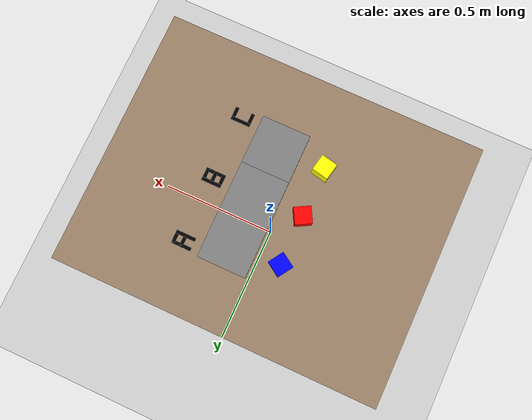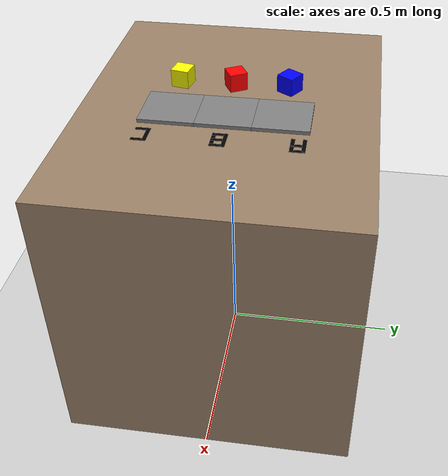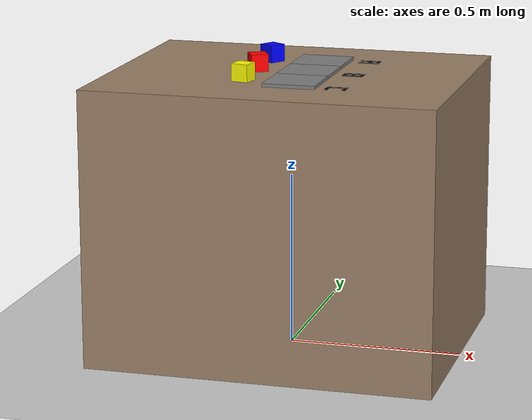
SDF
<?xml version="1.0" ?>
<sdf version="1.8">
  <world name="ur3e_sorting_world">

    <!-- Các plugin cốt lõi -->
    <plugin filename="ignition-gazebo-physics-system" name="ignition::gazebo::systems::Physics"/>
    <plugin filename="ignition-gazebo-user-commands-system" name="ignition::gazebo::systems::UserCommands"/>
    <plugin filename="ignition-gazebo-scene-broadcaster-system" name="ignition::gazebo::systems::SceneBroadcaster"/>

    <gravity>0 0 -9.8</gravity>

    <!-- Ánh sáng -->
    <light type="directional" name="sun">
      <cast_shadows>true</cast_shadows>
      <pose>0 0 10 0 0 0</pose>
      <diffuse>0.9 0.9 0.9 1</diffuse>
      <specular>0.2 0.2 0.2 1</specular>
      <direction>-0.5 0.5 -0.9</direction>
    </light>

    <!-- Mặt đất -->
    <model name="ground_plane">
      <static>true</static>
      <link name="link">
        <collision name="collision">
          <geometry><plane><normal>0 0 1</normal><size>10 10</size></plane></geometry>
        </collision>
        <visual name="visual">
          <geometry><plane><normal>0 0 1</normal><size>10 10</size></plane></geometry>
          <material>
            <ambient>0.8 0.8 0.8 1</ambient>
            <diffuse>0.8 0.8 0.8 1</diffuse>
          </material>
        </visual>
      </link>
    </model>

    <!-- ======================= BÀN (TABLE) ======================= -->
    <model name="table">
      <static>true</static>
      <pose>0 0 0.4 0 0 0</pose>
      <link name="link">
        <collision name="collision">
          <geometry><box><size>1.0 0.8 0.8</size></box></geometry>
        </collision>
        <visual name="visual">
          <geometry><box><size>1.0 0.8 0.8</size></box></geometry>
          <material>
            <ambient>0.6 0.5 0.4 1</ambient>
            <diffuse>0.6 0.5 0.4 1</diffuse>
          </material>
        </visual>
      </link>
    </model>

    <!-- ================= VỊ TRÍ ĐẶT ROBOT ================= -->
    <!-- Khi spawn UR3e hãy dùng tọa độ này: X = -0.35, Y = 0.0, Z = 0.8 -->

    <!-- ======================= CUBES ======================= -->
    <!-- Nằm trên mặt bàn, phía trước các khay. Nếu đổi vị trí thì phải sửa
         ur_task_planner/config/scene.yaml cho khớp. -->
    <model name="red_cube">
      <static>false</static>
      <pose>-0.10 0.0 0.825 0 0 0.5</pose>
      <link name="link">
        <inertial><mass>0.05</mass><inertia><ixx>2.08e-5</ixx><iyy>2.08e-5</iyy><izz>2.08e-5</izz></inertia></inertial>
        <collision name="collision">
          <geometry><box><size>0.05 0.05 0.05</size></box></geometry>
          <surface>
            <friction>
              <ode>
                <mu>1000.0</mu>
                <mu2>1000.0</mu2>
              </ode>
            </friction>
          </surface>
        </collision>
        <visual name="visual">
          <geometry><box><size>0.05 0.05 0.05</size></box></geometry>
          <material><ambient>1 0 0 1</ambient><diffuse>1 0 0 1</diffuse></material>
        </visual>
      </link>
    </model>

    <model name="yellow_cube">
      <static>false</static>
      <pose>-0.10 -0.15 0.825 0 0 -0.2</pose>
      <link name="link">
        <inertial><mass>0.05</mass><inertia><ixx>2.08e-5</ixx><iyy>2.08e-5</iyy><izz>2.08e-5</izz></inertia></inertial>
        <collision name="collision">
          <geometry><box><size>0.05 0.05 0.05</size></box></geometry>
          <surface>
            <friction>
              <ode>
                <mu>1000.0</mu>
                <mu2>1000.0</mu2>
              </ode>
            </friction>
          </surface>
        </collision>
        <visual name="visual">
          <geometry><box><size>0.05 0.05 0.05</size></box></geometry>
          <material><ambient>1 1 0 1</ambient><diffuse>1 1 0 1</diffuse></material>
        </visual>
      </link>
    </model>

    <model name="blue_cube">
      <static>false</static>
      <pose>-0.10 0.15 0.825 0 0 1.0</pose>
      <link name="link">
        <inertial><mass>0.05</mass><inertia><ixx>2.08e-5</ixx><iyy>2.08e-5</iyy><izz>2.08e-5</izz></inertia></inertial>
        <collision name="collision">
          <geometry><box><size>0.05 0.05 0.05</size></box></geometry>
          <surface>
            <friction>
              <ode>
                <mu>1000.0</mu>
                <mu2>1000.0</mu2>
              </ode>
            </friction>
          </surface>
        </collision>
        <visual name="visual">
          <geometry><box><size>0.05 0.05 0.05</size></box></geometry>
          <material><ambient>0 0 1 1</ambient><diffuse>0 0 1 1</diffuse></material>
        </visual>
      </link>
    </model>

    <!-- ======================= KHAY ĐÍCH (MÀU XÁM) ======================= -->
    <!-- Tâm khay ở X = 0.05, khớp với zones trong ur_task_planner/config/scene.yaml -->
    <model name="tray_A">
      <static>true</static>
      <pose>0.05 0.15 0.805 0 0 0</pose>
      <link name="link">
        <collision name="collision"><geometry><box><size>0.15 0.15 0.01</size></box></geometry></collision>
        <visual name="visual">
          <geometry><box><size>0.15 0.15 0.01</size></box></geometry>
          <material><ambient>0.5 0.5 0.5 1</ambient><diffuse>0.5 0.5 0.5 1</diffuse></material>
        </visual>
      </link>
    </model>

    <model name="tray_B">
      <static>true</static>
      <pose>0.05 0.0 0.805 0 0 0</pose>
      <link name="link">
        <collision name="collision"><geometry><box><size>0.15 0.15 0.01</size></box></geometry></collision>
        <visual name="visual">
          <geometry><box><size>0.15 0.15 0.01</size></box></geometry>
          <material><ambient>0.5 0.5 0.5 1</ambient><diffuse>0.5 0.5 0.5 1</diffuse></material>
        </visual>
      </link>
    </model>

    <model name="tray_C">
      <static>true</static>
      <pose>0.05 -0.15 0.805 0 0 0</pose>
      <link name="link">
        <collision name="collision"><geometry><box><size>0.15 0.15 0.01</size></box></geometry></collision>
        <visual name="visual">
          <geometry><box><size>0.15 0.15 0.01</size></box></geometry>
          <material><ambient>0.5 0.5 0.5 1</ambient><diffuse>0.5 0.5 0.5 1</diffuse></material>
        </visual>
      </link>
    </model>

    <!-- ======================= CHỮ KHẮC TRÊN BÀN ======================= -->
    <!-- Đã dịch chuyển ra xa tương ứng, X = 0.28 -->

    <model name="letter_A">
      <static>true</static>
      <pose>0.18 0.2 0.801 0 0 0</pose>
      <link name="link">
        <visual name="left_leg">
          <pose>0 0.015 0 0 0 0</pose>
          <geometry><box><size>0.06 0.01 0.001</size></box></geometry>
          <material><ambient>0 0 0 1</ambient><diffuse>0 0 0 1</diffuse></material>
        </visual>
        <visual name="right_leg">
          <pose>0 -0.015 0 0 0 0</pose>
          <geometry><box><size>0.06 0.01 0.001</size></box></geometry>
          <material><ambient>0 0 0 1</ambient><diffuse>0 0 0 1</diffuse></material>
        </visual>
        <visual name="top_bar">
          <pose>0.025 0 0 0 0 0</pose>
          <geometry><box><size>0.01 0.04 0.001</size></box></geometry>
          <material><ambient>0 0 0 1</ambient><diffuse>0 0 0 1</diffuse></material>
        </visual>
        <visual name="mid_bar">
          <pose>0 0 0 0 0 0</pose>
          <geometry><box><size>0.01 0.04 0.001</size></box></geometry>
          <material><ambient>0 0 0 1</ambient><diffuse>0 0 0 1</diffuse></material>
        </visual>
      </link>
    </model>

    <model name="letter_B">
      <static>true</static>
      <pose>0.18 0.0 0.801 0 0 0</pose>
      <link name="link">
        <visual name="spine">
          <pose>0 0.015 0 0 0 0</pose>
          <geometry><box><size>0.06 0.01 0.001</size></box></geometry>
          <material><ambient>0 0 0 1</ambient><diffuse>0 0 0 1</diffuse></material>
        </visual>
        <visual name="top_bar">
          <pose>0.025 -0.005 0 0 0 0</pose>
          <geometry><box><size>0.01 0.03 0.001</size></box></geometry>
          <material><ambient>0 0 0 1</ambient><diffuse>0 0 0 1</diffuse></material>
        </visual>
        <visual name="mid_bar">
          <pose>0 -0.005 0 0 0 0</pose>
          <geometry><box><size>0.01 0.03 0.001</size></box></geometry>
          <material><ambient>0 0 0 1</ambient><diffuse>0 0 0 1</diffuse></material>
        </visual>
        <visual name="bot_bar">
          <pose>-0.025 -0.005 0 0 0 0</pose>
          <geometry><box><size>0.01 0.03 0.001</size></box></geometry>
          <material><ambient>0 0 0 1</ambient><diffuse>0 0 0 1</diffuse></material>
        </visual>
        <visual name="right_top">
          <pose>0.0125 -0.015 0 0 0 0</pose>
          <geometry><box><size>0.015 0.01 0.001</size></box></geometry>
          <material><ambient>0 0 0 1</ambient><diffuse>0 0 0 1</diffuse></material>
        </visual>
        <visual name="right_bot">
          <pose>-0.0125 -0.015 0 0 0 0</pose>
          <geometry><box><size>0.015 0.01 0.001</size></box></geometry>
          <material><ambient>0 0 0 1</ambient><diffuse>0 0 0 1</diffuse></material>
        </visual>
      </link>
    </model>

    <model name="letter_C">
      <static>true</static>
      <pose>0.18 -0.2 0.801 0 0 0</pose>
      <link name="link">
        <visual name="spine">
          <pose>0 0.015 0 0 0 0</pose>
          <geometry><box><size>0.06 0.01 0.001</size></box></geometry>
          <material><ambient>0 0 0 1</ambient><diffuse>0 0 0 1</diffuse></material>
        </visual>
        <visual name="top_bar">
          <pose>0.025 -0.005 0 0 0 0</pose>
          <geometry><box><size>0.01 0.03 0.001</size></box></geometry>
          <material><ambient>0 0 0 1</ambient><diffuse>0 0 0 1</diffuse></material>
        </visual>
        <visual name="bot_bar">
          <pose>-0.025 -0.005 0 0 0 0</pose>
          <geometry><box><size>0.01 0.03 0.001</size></box></geometry>
          <material><ambient>0 0 0 1</ambient><diffuse>0 0 0 1</diffuse></material>
        </visual>
      </link>
    </model>

  </world>
</sdf>
